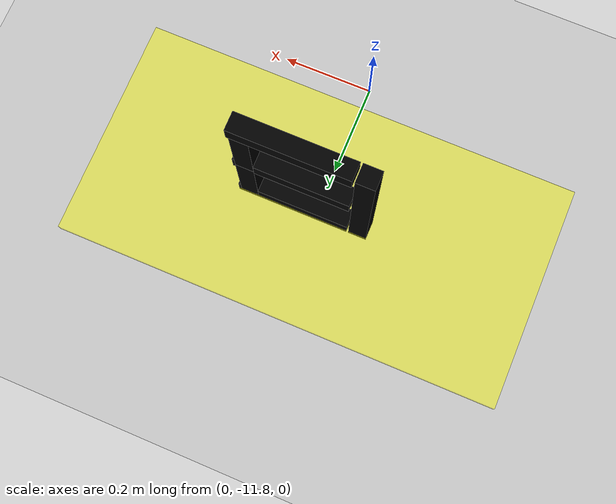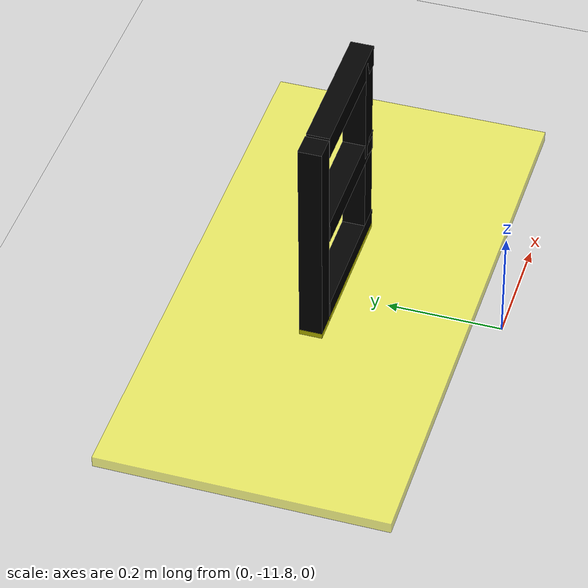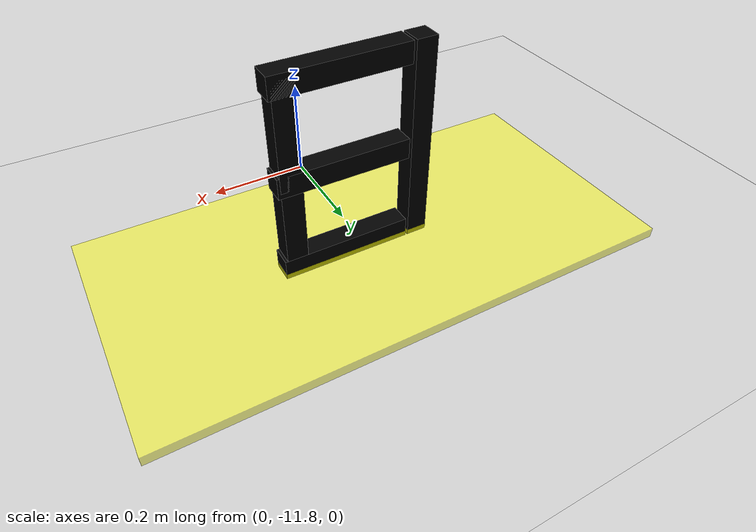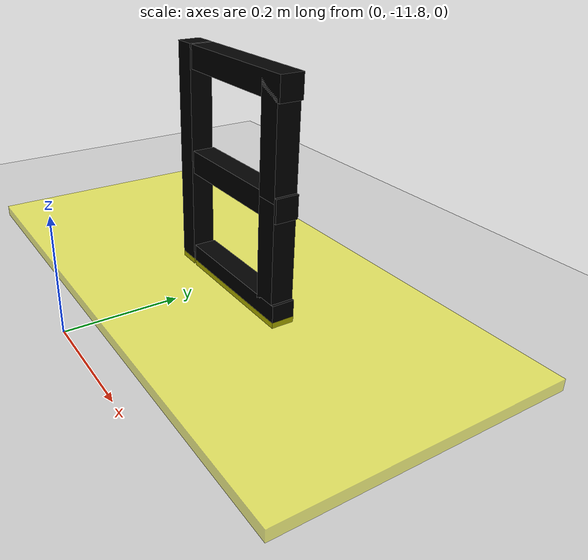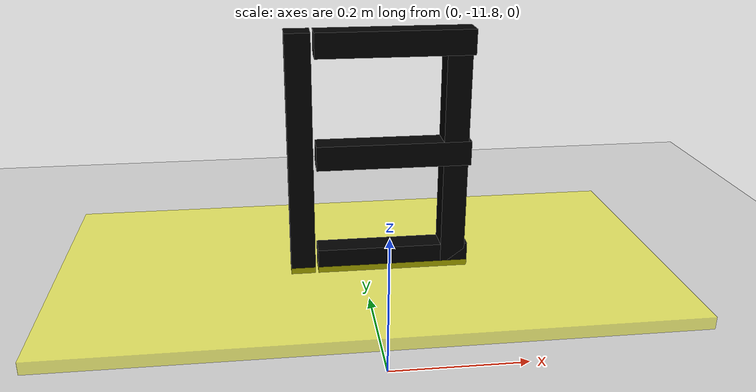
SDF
<sdf version="1.7">
 <world name="my_world">
  <model name="ground_plane">
   <static>1</static>
   <link name="link">
    <collision name="collision">
     <geometry><plane><normal>0 0 1</normal><size>100 100</size></plane></geometry>
     <surface>
      <contact><collide_bitmask>65535</collide_bitmask></contact>
      <friction><ode><mu>100</mu><mu2>50</mu2></ode></friction>
     </surface>
    </collision>
    <visual name="visual">
     <cast_shadows>0</cast_shadows>
     <geometry><plane><normal>0 0 1</normal><size>100 100</size></plane></geometry>
     <material>
      <script><uri>file://media/materials/scripts/gazebo.material</uri><name>Gazebo/Grey</name></script>
     </material>
    </visual>
   </link>
  </model>
  <model name="zone_b">
   <static>1</static>
   <pose>0 -11.5 0.01 0 -0 0</pose>
   <link name="base">
    <visual name="visual">
     <geometry><box><size>1 0.5 0.02</size></box></geometry>
     <material><ambient>1 1 0 0.5</ambient><diffuse>1 1 0 0.5</diffuse></material>
    </visual>
   </link>
   <link name="letter_B_vertical_stroke">
    <pose>-0.1 0 0.2 0 -0 0</pose>
    <visual name="v">
     <geometry><box><size>0.04 0.04 0.4</size></box></geometry>
     <material><ambient>0 0 0 1</ambient><diffuse>0 0 0 1</diffuse></material>
    </visual>
   </link>
   <link name="letter_B_top_horizontal">
    <pose>0.05 0 0.38 0 -0 0</pose>
    <visual name="v">
     <geometry><box><size>0.25 0.04 0.04</size></box></geometry>
     <material><ambient>0 0 0 1</ambient><diffuse>0 0 0 1</diffuse></material>
    </visual>
   </link>
   <link name="letter_B_middle_horizontal">
    <pose>0.05 0 0.2 0 -0 0</pose>
    <visual name="v">
     <geometry><box><size>0.25 0.04 0.04</size></box></geometry>
     <material><ambient>0 0 0 1</ambient><diffuse>0 0 0 1</diffuse></material>
    </visual>
   </link>
   <link name="letter_B_bottom_horizontal">
    <pose>0.05 0 0.02 0 -0 0</pose>
    <visual name="v">
     <geometry><box><size>0.25 0.04 0.04</size></box></geometry>
     <material><ambient>0 0 0 1</ambient><diffuse>0 0 0 1</diffuse></material>
    </visual>
   </link>
   <link name="letter_B_top_vertical_stroke">
    <pose>0.15 0 0.29 0 -0 0</pose>
    <visual name="v">
     <geometry><box><size>0.04 0.04 0.2</size></box></geometry>
     <material><ambient>0 0 0 1</ambient><diffuse>0 0 0 1</diffuse></material>
    </visual>
   </link>
   <link name="letter_B_bottom_vertical_stroke">
    <pose>0.15 0 0.11 0 -0 0</pose>
    <visual name="v">
     <geometry><box><size>0.04 0.04 0.2</size></box></geometry>
     <material><ambient>0 0 0 1</ambient><diffuse>0 0 0 1</diffuse></material>
    </visual>
   </link>
  </model>
 </world>
</sdf>
